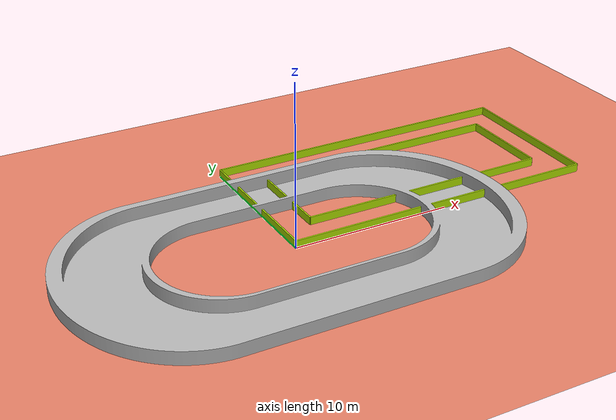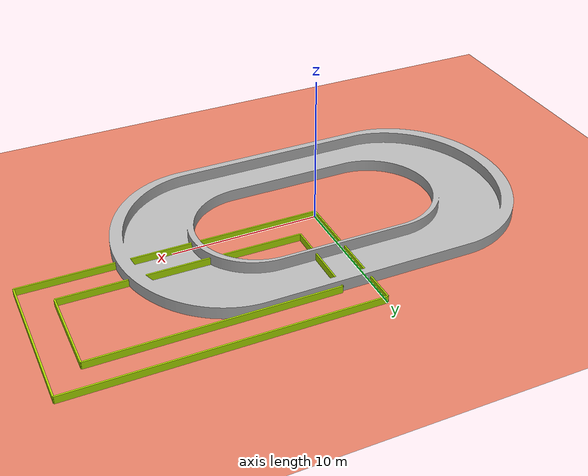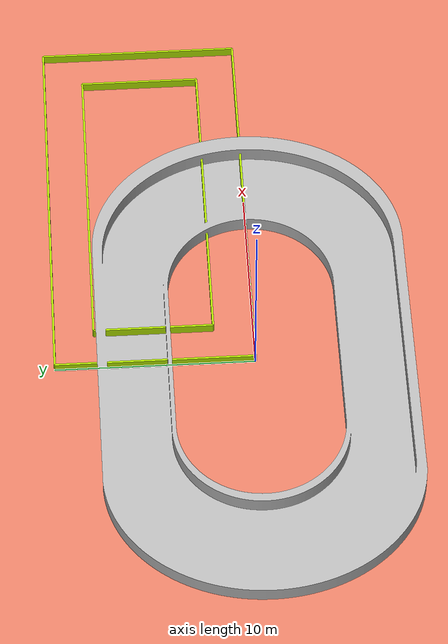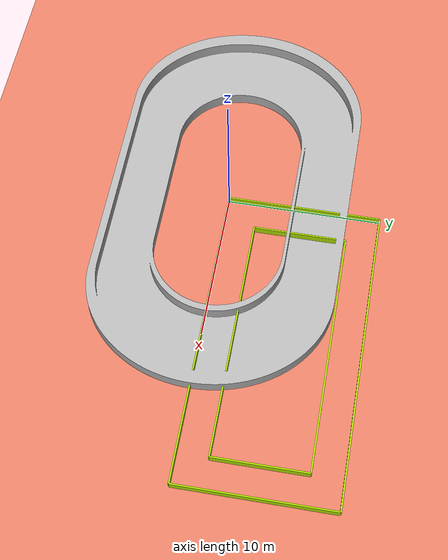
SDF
<?xml version="1.0" ?>
<sdf version="1.10">
    <world name="track">
        <physics name="1ms" type="ignored">
            <max_step_size>0.001</max_step_size>
            <real_time_factor>1.0</real_time_factor>
        </physics>
        <plugin
            filename="gz-sim-physics-system"
            name="gz::sim::systems::Physics">
        </plugin>
        <plugin
            filename="gz-sim-user-commands-system"
            name="gz::sim::systems::UserCommands">
        </plugin>
        <plugin
            filename="gz-sim-scene-broadcaster-system"
            name="gz::sim::systems::SceneBroadcaster">
        </plugin>

	<plugin
	    filename="gz-sim-sensors-system"
            name="gz::sim::systems::Sensors">
            <render_engine>ogre2</render_engine>
        </plugin>
	<plugin filename="gz-sim-imu-system"
        	name="gz::sim::systems::Imu">
	</plugin>
        <plugin
          filename="gz-sim-navsat-system"
          name="gz::sim::systems::NavSat">
        </plugin>

        <spherical_coordinates>
          <surface_model>EARTH_WGS84</surface_model>
          <world_frame_orientation>ENU</world_frame_orientation>
          <latitude_deg>41.19115</latitude_deg>
          <longitude_deg>-111.94426</longitude_deg>
          <elevation>1200</elevation>
          <heading_deg>0</heading_deg>
        </spherical_coordinates>

        <light type="directional" name="sun">
            <cast_shadows>true</cast_shadows>
            <pose>0 0 10 0 0 0</pose>
            <diffuse>0.8 0.8 0.8 1</diffuse>
            <specular>0.2 0.2 0.2 1</specular>
            <attenuation>
                <range>1000</range>
                <constant>0.9</constant>
                <linear>0.01</linear>
                <quadratic>0.001</quadratic>
            </attenuation>
            <direction>-0.5 0.1 -0.9</direction>
        </light>

        <model name="ground_plane">
            <static>true</static>
            <link name="link">
                <collision name="collision">
                <geometry>
                    <plane>
                    <normal>0 0 1</normal>
                    <size>100 100</size>
                    </plane>
                </geometry>
                </collision>
                <visual name="visual">
                <geometry>
                    <plane>
                    <normal>0 0 1</normal>
                    <size>100 100</size>
                    </plane>
                </geometry>
                <material>
            <ambient>0.9 0.5 0.4 1</ambient> -->
            <diffuse>0.9 0.5 0.4 1</diffuse> -->
                </material>
                </visual>
            </link>
        </model>
    <model name='wall1'>
	    <static>true</static>
        <link name='wall'>
            <pose>10 0 0.25 0 0 0</pose>
            <collision name='collision'>
                <geometry>
                    <box>
                        <size>20 0.1 0.5</size>
                    </box>
                </geometry>
            </collision>
            <visual name='visual'>
                <geometry>
                    <box>
                        <size>20 0.1 0.5</size>
                    </box>
                </geometry>
                <material>
            <ambient>0.5 0.75 0 1</ambient>
            <diffuse>0.7 0.9 0 1</diffuse>
            <specular>0.2 0.2 0.2 1</specular>
            <emissive>0.1 0 0.1 1</emissive>
                </material>
            </visual>
        </link>
    </model>
    <model name='wall2' >
            <static>true</static>
        <link name='wall'>
            <pose>10 10 0.25 0 0 0</pose>
            <visual name='visual'>
                <geometry>
                    <box>
                        <size>20 0.1 0.5</size>
                    </box>
                </geometry>
                <material>
            <ambient>0.5 0.75 0 1</ambient>
            <diffuse>0.7 0.9 0 1</diffuse>
            <specular>0.2 0.2 0.2 1</specular>
            <emissive>0.1 0 0.1 1</emissive>

                </material>
            </visual>
            <collision name='collision'>
                <geometry>
                    <box>
                        <size>20 0.1 3</size>
                    </box>
                </geometry>
            </collision>
        </link>
    </model>

    <model name='wall3' >
            <static>true</static>
        <link name='wall'>
            <pose>0 5 0.25 0 0 1.5707</pose>
            <visual name='visual'>
                <geometry>
                    <box>
                        <size>10 0.1 0.5</size>
                    </box>
                </geometry>
                <material>
            <ambient>0.5 0.75 0 1</ambient>
            <diffuse>0.7 0.9 0 1</diffuse>
            <specular>0.2 0.2 0.2 1</specular>
            <emissive>0.1 0 0.1 1</emissive>
                </material>
            </visual>
            <collision name='collision'>
                <geometry>
                    <box>
                        <size>10 0.1 0.5</size>
                    </box>
                </geometry>
            </collision>
        </link>
    </model>
    <model name='wall4' >
            <static>true</static>
        <link name='wall'>
            <pose>20 5 0.25 0 0 1.5707</pose>
            <visual name='visual'>
                <geometry>
                    <box>
                        <size>10 0.1 0.5</size>
                    </box>
                </geometry>
                <material>
            <ambient>0.5 0.75 0 1</ambient>
            <diffuse>0.7 0.9 0 1</diffuse>
            <specular>0.2 0.2 0.2 1</specular>
            <emissive>0.1 0 0.1 1</emissive>
                </material>
            </visual>
            <collision name='collision'>
                <geometry>
                    <box>
                        <size>10 0.1 0.5</size>
                    </box>
                </geometry>
            </collision>
        </link>
    </model>
    <model name='wall5' >
            <static>true</static>
        <link name='wall'>
            <pose>2 5 0.25 0 0 1.5707</pose>
            <visual name='visual'>
                <geometry>
                    <box>
                        <size>6 0.1 0.5</size>
                    </box>
                </geometry>
                <material>
            <ambient>0.5 0.75 0 1</ambient>
            <diffuse>0.7 0.9 0 1</diffuse>
            <specular>0.2 0.2 0.2 1</specular>
            <emissive>0.1 0 0.1 1</emissive>
                </material>
            </visual>
            <collision name='collision'>
                <geometry>
                    <box>
                        <size>6 0.1 0.5</size>
                    </box>
                </geometry>
            </collision>
        </link>
    </model>
    <model name='wall6' >
            <static>true</static>
        <link name='wall'>
            <pose>18 5 0.25 0 0 1.5707</pose>
            <visual name='visual'>
                <geometry>
                    <box>
                        <size>6 0.1 0.5</size>
                    </box>
                </geometry>
                <material>
            <ambient>0.5 0.75 0 1</ambient>
            <diffuse>0.7 0.9 0 1</diffuse>
            <specular>0.2 0.2 0.2 1</specular>
            <emissive>0.1 0 0.1 1</emissive>
                </material>
            </visual>
            <collision name='collision'>
                <geometry>
                    <box>
                        <size>6 0.1 0.5</size>
                    </box>
                </geometry>
            </collision>
        </link>
    </model>
    <model name='wall7'>
	    <static>true</static>
        <link name='wall'>
            <pose>10 8 0.25 0 0 0</pose>
            <collision name='collision'>
                <geometry>
                    <box>
                        <size>16 0.1 0.5</size>
                    </box>
                </geometry>
            </collision>
            <visual name='visual'>
                <geometry>
                    <box>
                        <size>16 0.1 0.5</size>
                    </box>
                </geometry>
                <material>
            <ambient>0.5 0.75 0 1</ambient>
            <diffuse>0.7 0.9 0 1</diffuse>
            <specular>0.2 0.2 0.2 1</specular>
            <emissive>0.1 0 0.1 1</emissive>
                </material>
            </visual>
        </link>
    </model>
    <model name='wall8'>
	    <static>true</static>
        <link name='wall'>
            <pose>10 2 0.25 0 0 0</pose>
            <collision name='collision'>
                <geometry>
                    <box>
                        <size>16 0.1 0.5</size>
                    </box>
                </geometry>
            </collision>
            <visual name='visual'>
                <geometry>
                    <box>
                        <size>16 0.1 0.5</size>
                    </box>
                </geometry>
                <material>
            <ambient>0.5 0.75 0 1</ambient>
            <diffuse>0.7 0.9 0 1</diffuse>
            <specular>0.2 0.2 0.2 1</specular>
            <emissive>0.1 0 0.1 1</emissive>
                </material>
            </visual>
        </link>
    </model>
    <model name='track'>
	<static>true</static>
        <link name='wall'>
            <pose>0 0 0 0 0 0</pose>
            <collision name='collision'>
                <geometry>
                    <mesh>
               		<uri>package://robot/worlds/meshes/racetrack.obj</uri>
                    </mesh>
                </geometry>
            </collision>
            <visual name='visual'>
                <geometry>
                    <mesh>
               		<uri>package://robot/worlds/meshes/racetrack.obj</uri>
                    </mesh>
                </geometry>
            </visual>
        </link>
    </model>

    </world>
</sdf>
